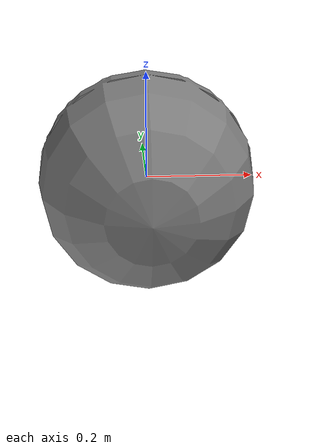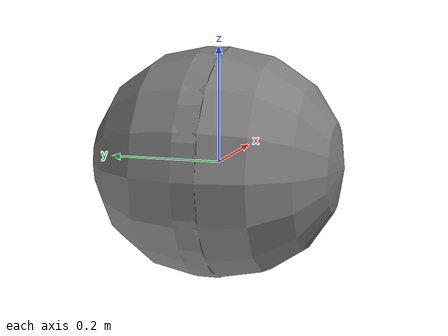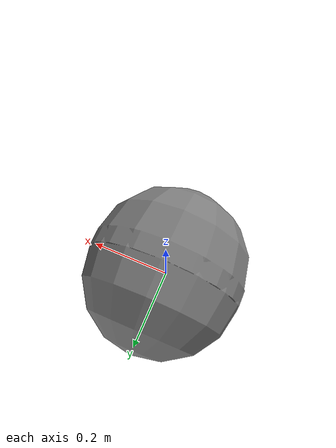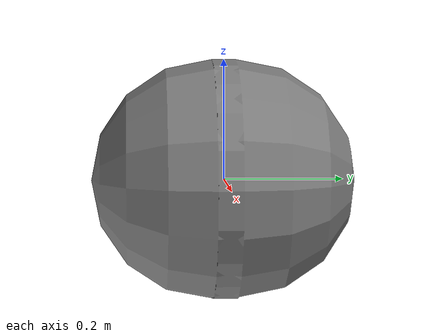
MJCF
<mujoco model="Hoop">
  <compiler angle="degree" coordinate="local" inertiafromgeom="true" />
  <worldbody>
    <body name="chassis" pos="0 0 0">
      <geom density="50" pos="0 0 0" size="0.2 0.02" type="capsule" euler="90 0 0"/>
      <joint name="root_joint" type="free" />
    </body>
  </worldbody>
</mujoco>
